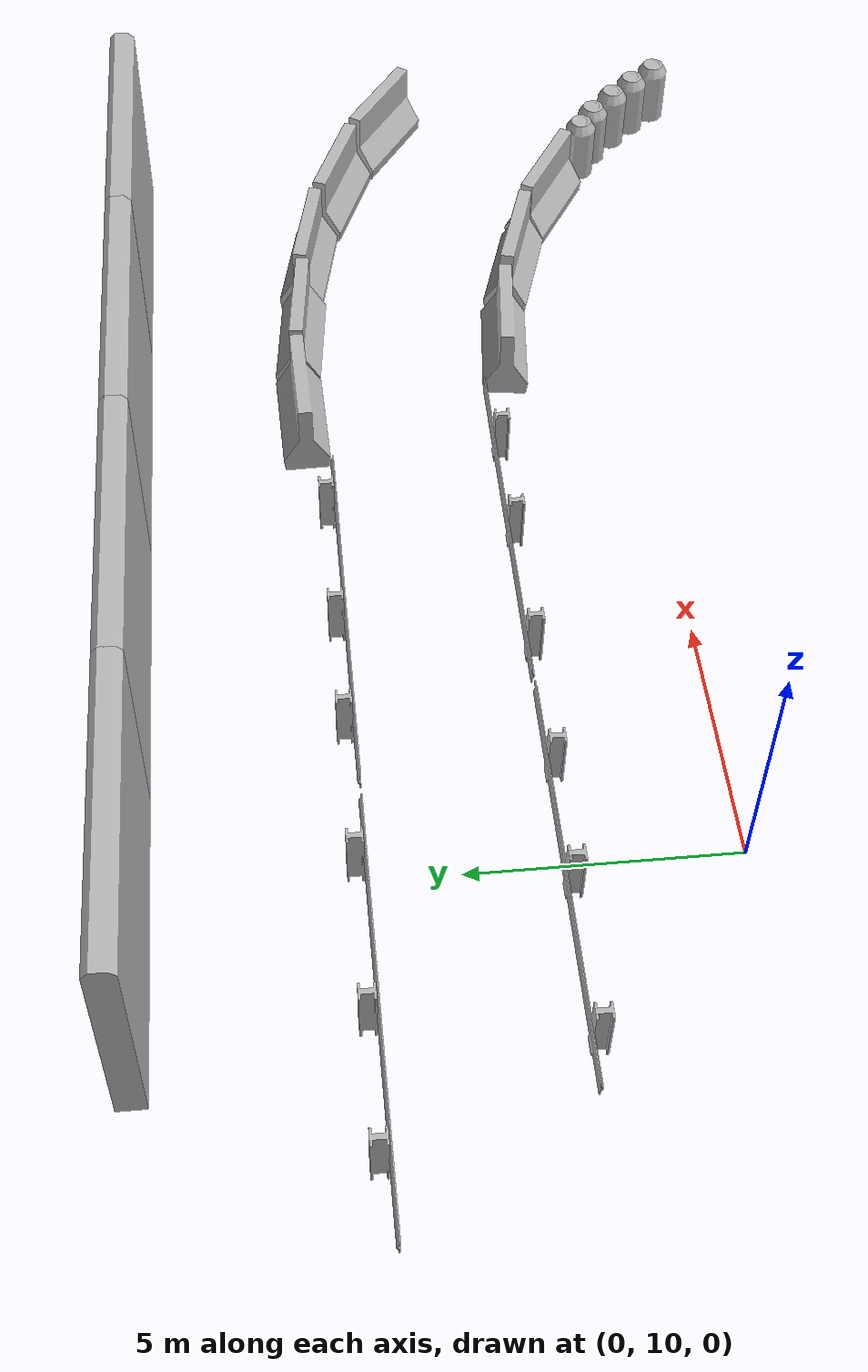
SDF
<sdf version="1.7">
 <world name="default">
  <model name="aws_robomaker_racetrack_CrashworthBucket_01_32">
   <frame name="aws_CrashworthBucket_01::__model__" attached_to="aws_CrashworthBucket_01::body">
    <pose relative_to="__model__">0 0 0 0 -0 0</pose>
   </frame>
   <link name="aws_CrashworthBucket_01::body">
    <pose relative_to="aws_CrashworthBucket_01::__model__">0 0 0 0 -0 0</pose>
    <inertial>
     <mass>5</mass>
     <inertia><ixx>1</ixx><ixy>0</ixy><ixz>0</ixz><iyy>1</iyy><iyz>0</iyz><izz>1</izz></inertia>
    </inertial>
    <visual name="visual">
     <geometry>
      <mesh>
       <uri>file://models/aws_robomaker_racetrack_CrashworthBucket_01/meshes/aws_CrashworthBucket_01_visual.DAE</uri>
      </mesh>
     </geometry>
     <material><shader type="pixel"><normal_map>__default__</normal_map></shader></material>
     <meta><layer>0</layer></meta>
    </visual>
    <collision name="collision_0">
     <geometry>
      <mesh>
       <uri>file://models/aws_robomaker_racetrack_CrashworthBucket_01/meshes/aws_CrashworthBucket_01_collision.DAE</uri>
       <scale>1 1 1</scale>
      </mesh>
     </geometry>
     <surface>
      <friction>
       <ode><mu>1</mu><mu2>1</mu2><fdir1>0 0 0</fdir1><slip1>0</slip1><slip2>0</slip2></ode>
       <torsional>
        <coefficient>1</coefficient>
        <patch_radius>0</patch_radius>
        <surface_radius>0</surface_radius>
        <use_patch_radius>1</use_patch_radius>
        <ode><slip>0</slip></ode>
       </torsional>
      </friction>
      <bounce><restitution_coefficient>0</restitution_coefficient><threshold>1e+06</threshold></bounce>
      <contact>
       <collide_without_contact>0</collide_without_contact>
       <collide_without_contact_bitmask>1</collide_without_contact_bitmask>
       <collide_bitmask>1</collide_bitmask>
       <ode>
        <soft_cfm>0</soft_cfm>
        <soft_erp>0.2</soft_erp>
        <kp>1e+13</kp>
        <kd>1</kd>
        <max_vel>0.01</max_vel>
        <min_depth>0</min_depth>
       </ode>
       <bullet>
        <split_impulse>1</split_impulse>
        <split_impulse_penetration_threshold>-0.01</split_impulse_penetration_threshold>
        <soft_cfm>0</soft_cfm>
        <soft_erp>0.2</soft_erp>
        <kp>1e+13</kp>
        <kd>1</kd>
       </bullet>
      </contact>
     </surface>
    </collision>
   </link>
   <static>1</static>
   <pose>20.5304 9.13561 0.054 0 0 -0.001449</pose>
  </model>
  <model name="aws_robomaker_racetrack_CrashworthBucket_01_33">
   <frame name="aws_CrashworthBucket_01::__model__" attached_to="aws_CrashworthBucket_01::body">
    <pose relative_to="__model__">0 0 0 0 -0 0</pose>
   </frame>
   <link name="aws_CrashworthBucket_01::body">
    <pose relative_to="aws_CrashworthBucket_01::__model__">0 0 0 0 -0 0</pose>
    <inertial>
     <mass>5</mass>
     <inertia><ixx>1</ixx><ixy>0</ixy><ixz>0</ixz><iyy>1</iyy><iyz>0</iyz><izz>1</izz></inertia>
    </inertial>
    <visual name="visual">
     <geometry>
      <mesh>
       <uri>file://models/aws_robomaker_racetrack_CrashworthBucket_01/meshes/aws_CrashworthBucket_01_visual.DAE</uri>
      </mesh>
     </geometry>
     <material><shader type="pixel"><normal_map>__default__</normal_map></shader></material>
     <meta><layer>0</layer></meta>
    </visual>
    <collision name="collision_0">
     <geometry>
      <mesh>
       <uri>file://models/aws_robomaker_racetrack_CrashworthBucket_01/meshes/aws_CrashworthBucket_01_collision.DAE</uri>
       <scale>1 1 1</scale>
      </mesh>
     </geometry>
     <surface>
      <friction>
       <ode><mu>1</mu><mu2>1</mu2><fdir1>0 0 0</fdir1><slip1>0</slip1><slip2>0</slip2></ode>
       <torsional>
        <coefficient>1</coefficient>
        <patch_radius>0</patch_radius>
        <surface_radius>0</surface_radius>
        <use_patch_radius>1</use_patch_radius>
        <ode><slip>0</slip></ode>
       </torsional>
      </friction>
      <bounce><restitution_coefficient>0</restitution_coefficient><threshold>1e+06</threshold></bounce>
      <contact>
       <collide_without_contact>0</collide_without_contact>
       <collide_without_contact_bitmask>1</collide_without_contact_bitmask>
       <collide_bitmask>1</collide_bitmask>
       <ode>
        <soft_cfm>0</soft_cfm>
        <soft_erp>0.2</soft_erp>
        <kp>1e+13</kp>
        <kd>1</kd>
        <max_vel>0.01</max_vel>
        <min_depth>0</min_depth>
       </ode>
       <bullet>
        <split_impulse>1</split_impulse>
        <split_impulse_penetration_threshold>-0.01</split_impulse_penetration_threshold>
        <soft_cfm>0</soft_cfm>
        <soft_erp>0.2</soft_erp>
        <kp>1e+13</kp>
        <kd>1</kd>
       </bullet>
      </contact>
     </surface>
    </collision>
   </link>
   <static>1</static>
   <pose>19.3714 10.0864 0.054 0 -0 0</pose>
  </model>
  <model name="aws_robomaker_racetrack_CrashworthBucket_01_34">
   <frame name="aws_CrashworthBucket_01::__model__" attached_to="aws_CrashworthBucket_01::body">
    <pose relative_to="__model__">0 0 0 0 -0 0</pose>
   </frame>
   <link name="aws_CrashworthBucket_01::body">
    <pose relative_to="aws_CrashworthBucket_01::__model__">0 0 0 0 -0 0</pose>
    <inertial>
     <mass>5</mass>
     <inertia><ixx>1</ixx><ixy>0</ixy><ixz>0</ixz><iyy>1</iyy><iyz>0</iyz><izz>1</izz></inertia>
    </inertial>
    <visual name="visual">
     <geometry>
      <mesh>
       <uri>file://models/aws_robomaker_racetrack_CrashworthBucket_01/meshes/aws_CrashworthBucket_01_visual.DAE</uri>
      </mesh>
     </geometry>
     <material><shader type="pixel"><normal_map>__default__</normal_map></shader></material>
     <meta><layer>0</layer></meta>
    </visual>
    <collision name="collision_0">
     <geometry>
      <mesh>
       <uri>file://models/aws_robomaker_racetrack_CrashworthBucket_01/meshes/aws_CrashworthBucket_01_collision.DAE</uri>
       <scale>1 1 1</scale>
      </mesh>
     </geometry>
     <surface>
      <friction>
       <ode><mu>1</mu><mu2>1</mu2><fdir1>0 0 0</fdir1><slip1>0</slip1><slip2>0</slip2></ode>
       <torsional>
        <coefficient>1</coefficient>
        <patch_radius>0</patch_radius>
        <surface_radius>0</surface_radius>
        <use_patch_radius>1</use_patch_radius>
        <ode><slip>0</slip></ode>
       </torsional>
      </friction>
      <bounce><restitution_coefficient>0</restitution_coefficient><threshold>1e+06</threshold></bounce>
      <contact>
       <collide_without_contact>0</collide_without_contact>
       <collide_without_contact_bitmask>1</collide_without_contact_bitmask>
       <collide_bitmask>1</collide_bitmask>
       <ode>
        <soft_cfm>0</soft_cfm>
        <soft_erp>0.2</soft_erp>
        <kp>1e+13</kp>
        <kd>1</kd>
        <max_vel>0.01</max_vel>
        <min_depth>0</min_depth>
       </ode>
       <bullet>
        <split_impulse>1</split_impulse>
        <split_impulse_penetration_threshold>-0.01</split_impulse_penetration_threshold>
        <soft_cfm>0</soft_cfm>
        <soft_erp>0.2</soft_erp>
        <kp>1e+13</kp>
        <kd>1</kd>
       </bullet>
      </contact>
     </surface>
    </collision>
   </link>
   <static>1</static>
   <pose>20.0016 9.69426 0 0 0 -0.00182</pose>
  </model>
  <model name="aws_robomaker_racetrack_CrashworthBucket_01_35">
   <frame name="aws_CrashworthBucket_01::__model__" attached_to="aws_CrashworthBucket_01::body">
    <pose relative_to="__model__">0 0 0 0 -0 0</pose>
   </frame>
   <link name="aws_CrashworthBucket_01::body">
    <pose relative_to="aws_CrashworthBucket_01::__model__">0 0 0 0 -0 0</pose>
    <inertial>
     <mass>5</mass>
     <inertia><ixx>1</ixx><ixy>0</ixy><ixz>0</ixz><iyy>1</iyy><iyz>0</iyz><izz>1</izz></inertia>
    </inertial>
    <visual name="visual">
     <geometry>
      <mesh>
       <uri>file://models/aws_robomaker_racetrack_CrashworthBucket_01/meshes/aws_CrashworthBucket_01_visual.DAE</uri>
      </mesh>
     </geometry>
     <material><shader type="pixel"><normal_map>__default__</normal_map></shader></material>
     <meta><layer>0</layer></meta>
    </visual>
    <collision name="collision_0">
     <geometry>
      <mesh>
       <uri>file://models/aws_robomaker_racetrack_CrashworthBucket_01/meshes/aws_CrashworthBucket_01_collision.DAE</uri>
       <scale>1 1 1</scale>
      </mesh>
     </geometry>
     <surface>
      <friction>
       <ode><mu>1</mu><mu2>1</mu2><fdir1>0 0 0</fdir1><slip1>0</slip1><slip2>0</slip2></ode>
       <torsional>
        <coefficient>1</coefficient>
        <patch_radius>0</patch_radius>
        <surface_radius>0</surface_radius>
        <use_patch_radius>1</use_patch_radius>
        <ode><slip>0</slip></ode>
       </torsional>
      </friction>
      <bounce><restitution_coefficient>0</restitution_coefficient><threshold>1e+06</threshold></bounce>
      <contact>
       <collide_without_contact>0</collide_without_contact>
       <collide_without_contact_bitmask>1</collide_without_contact_bitmask>
       <collide_bitmask>1</collide_bitmask>
       <ode>
        <soft_cfm>0</soft_cfm>
        <soft_erp>0.2</soft_erp>
        <kp>1e+13</kp>
        <kd>1</kd>
        <max_vel>0.01</max_vel>
        <min_depth>0</min_depth>
       </ode>
       <bullet>
        <split_impulse>1</split_impulse>
        <split_impulse_penetration_threshold>-0.01</split_impulse_penetration_threshold>
        <soft_cfm>0</soft_cfm>
        <soft_erp>0.2</soft_erp>
        <kp>1e+13</kp>
        <kd>1</kd>
       </bullet>
      </contact>
     </surface>
    </collision>
   </link>
   <static>1</static>
   <pose>21.0478 8.57525 0.054 0 0 -0.000349</pose>
  </model>
  <model name="aws_robomaker_racetrack_CrashworthBucket_01_36">
   <frame name="aws_CrashworthBucket_01::__model__" attached_to="aws_CrashworthBucket_01::body">
    <pose relative_to="__model__">0 0 0 0 -0 0</pose>
   </frame>
   <link name="aws_CrashworthBucket_01::body">
    <pose relative_to="aws_CrashworthBucket_01::__model__">0 0 0 0 -0 0</pose>
    <inertial>
     <mass>5</mass>
     <inertia><ixx>1</ixx><ixy>0</ixy><ixz>0</ixz><iyy>1</iyy><iyz>0</iyz><izz>1</izz></inertia>
    </inertial>
    <visual name="visual">
     <geometry>
      <mesh>
       <uri>file://models/aws_robomaker_racetrack_CrashworthBucket_01/meshes/aws_CrashworthBucket_01_visual.DAE</uri>
      </mesh>
     </geometry>
     <material><shader type="pixel"><normal_map>__default__</normal_map></shader></material>
     <meta><layer>0</layer></meta>
    </visual>
    <collision name="collision_0">
     <geometry>
      <mesh>
       <uri>file://models/aws_robomaker_racetrack_CrashworthBucket_01/meshes/aws_CrashworthBucket_01_collision.DAE</uri>
       <scale>1 1 1</scale>
      </mesh>
     </geometry>
     <surface>
      <friction>
       <ode><mu>1</mu><mu2>1</mu2><fdir1>0 0 0</fdir1><slip1>0</slip1><slip2>0</slip2></ode>
       <torsional>
        <coefficient>1</coefficient>
        <patch_radius>0</patch_radius>
        <surface_radius>0</surface_radius>
        <use_patch_radius>1</use_patch_radius>
        <ode><slip>0</slip></ode>
       </torsional>
      </friction>
      <bounce><restitution_coefficient>0</restitution_coefficient><threshold>1e+06</threshold></bounce>
      <contact>
       <collide_without_contact>0</collide_without_contact>
       <collide_without_contact_bitmask>1</collide_without_contact_bitmask>
       <collide_bitmask>1</collide_bitmask>
       <ode>
        <soft_cfm>0</soft_cfm>
        <soft_erp>0.2</soft_erp>
        <kp>1e+13</kp>
        <kd>1</kd>
        <max_vel>0.01</max_vel>
        <min_depth>0</min_depth>
       </ode>
       <bullet>
        <split_impulse>1</split_impulse>
        <split_impulse_penetration_threshold>-0.01</split_impulse_penetration_threshold>
        <soft_cfm>0</soft_cfm>
        <soft_erp>0.2</soft_erp>
        <kp>1e+13</kp>
        <kd>1</kd>
       </bullet>
      </contact>
     </surface>
    </collision>
   </link>
   <static>1</static>
   <pose>21.5218 7.97169 0.054 0 -0 0</pose>
  </model>
  <model name="aws_robomaker_racetrack_Fence_01_00">
   <frame name="aws_Fence_01::__model__" attached_to="aws_Fence_01::body">
    <pose relative_to="__model__">0 0 0 0 -0 0</pose>
   </frame>
   <link name="aws_Fence_01::body">
    <pose relative_to="aws_Fence_01::__model__">0 0 0 0 -0 0</pose>
    <inertial>
     <mass>5</mass>
     <inertia><ixx>1</ixx><ixy>0</ixy><ixz>0</ixz><iyy>1</iyy><iyz>0</iyz><izz>1</izz></inertia>
    </inertial>
    <visual name="visual">
     <geometry>
      <mesh><uri>file://models/aws_robomaker_racetrack_Fence_01/meshes/aws_Fence_01_visual.DAE</uri></mesh>
     </geometry>
     <material><shader type="pixel"><normal_map>__default__</normal_map></shader></material>
     <meta><layer>0</layer></meta>
    </visual>
    <collision name="collision_0">
     <geometry>
      <mesh>
       <uri>file://models/aws_robomaker_racetrack_Fence_01/meshes/aws_Fence_01_collision.DAE</uri>
       <scale>1 1 1</scale>
      </mesh>
     </geometry>
     <surface>
      <friction>
       <ode><mu>1</mu><mu2>1</mu2><fdir1>0 0 0</fdir1><slip1>0</slip1><slip2>0</slip2></ode>
       <torsional>
        <coefficient>1</coefficient>
        <patch_radius>0</patch_radius>
        <surface_radius>0</surface_radius>
        <use_patch_radius>1</use_patch_radius>
        <ode><slip>0</slip></ode>
       </torsional>
      </friction>
      <bounce><restitution_coefficient>0</restitution_coefficient><threshold>1e+06</threshold></bounce>
      <contact>
       <collide_without_contact>0</collide_without_contact>
       <collide_without_contact_bitmask>1</collide_without_contact_bitmask>
       <collide_bitmask>1</collide_bitmask>
       <ode>
        <soft_cfm>0</soft_cfm>
        <soft_erp>0.2</soft_erp>
        <kp>1e+13</kp>
        <kd>1</kd>
        <max_vel>0.01</max_vel>
        <min_depth>0</min_depth>
       </ode>
       <bullet>
        <split_impulse>1</split_impulse>
        <split_impulse_penetration_threshold>-0.01</split_impulse_penetration_threshold>
        <soft_cfm>0</soft_cfm>
        <soft_erp>0.2</soft_erp>
        <kp>1e+13</kp>
        <kd>1</kd>
       </bullet>
      </contact>
     </surface>
    </collision>
   </link>
   <static>1</static>
   <pose>7.553 13.1587 0 0 0 -1.57272</pose>
  </model>
  <model name="aws_robomaker_racetrack_Fence_01_01">
   <frame name="aws_Fence_01::__model__" attached_to="aws_Fence_01::body">
    <pose relative_to="__model__">0 0 0 0 -0 0</pose>
   </frame>
   <link name="aws_Fence_01::body">
    <pose relative_to="aws_Fence_01::__model__">0 0 0 0 -0 0</pose>
    <inertial>
     <mass>5</mass>
     <inertia><ixx>1</ixx><ixy>0</ixy><ixz>0</ixz><iyy>1</iyy><iyz>0</iyz><izz>1</izz></inertia>
    </inertial>
    <visual name="visual">
     <geometry>
      <mesh><uri>file://models/aws_robomaker_racetrack_Fence_01/meshes/aws_Fence_01_visual.DAE</uri></mesh>
     </geometry>
     <material><shader type="pixel"><normal_map>__default__</normal_map></shader></material>
     <meta><layer>0</layer></meta>
    </visual>
    <collision name="collision_0">
     <geometry>
      <mesh>
       <uri>file://models/aws_robomaker_racetrack_Fence_01/meshes/aws_Fence_01_collision.DAE</uri>
       <scale>1 1 1</scale>
      </mesh>
     </geometry>
     <surface>
      <friction>
       <ode><mu>1</mu><mu2>1</mu2><fdir1>0 0 0</fdir1><slip1>0</slip1><slip2>0</slip2></ode>
       <torsional>
        <coefficient>1</coefficient>
        <patch_radius>0</patch_radius>
        <surface_radius>0</surface_radius>
        <use_patch_radius>1</use_patch_radius>
        <ode><slip>0</slip></ode>
       </torsional>
      </friction>
      <bounce><restitution_coefficient>0</restitution_coefficient><threshold>1e+06</threshold></bounce>
      <contact>
       <collide_without_contact>0</collide_without_contact>
       <collide_without_contact_bitmask>1</collide_without_contact_bitmask>
       <collide_bitmask>1</collide_bitmask>
       <ode>
        <soft_cfm>0</soft_cfm>
        <soft_erp>0.2</soft_erp>
        <kp>1e+13</kp>
        <kd>1</kd>
        <max_vel>0.01</max_vel>
        <min_depth>0</min_depth>
       </ode>
       <bullet>
        <split_impulse>1</split_impulse>
        <split_impulse_penetration_threshold>-0.01</split_impulse_penetration_threshold>
        <soft_cfm>0</soft_cfm>
        <soft_erp>0.2</soft_erp>
        <kp>1e+13</kp>
        <kd>1</kd>
       </bullet>
      </contact>
     </surface>
    </collision>
   </link>
   <static>1</static>
   <pose>-0.500271 13.1587 0 0 0 -1.57272</pose>
  </model>
  <model name="aws_robomaker_racetrack_Fence_01_14">
   <frame name="aws_Fence_01::__model__" attached_to="aws_Fence_01::body">
    <pose relative_to="__model__">0 0 0 0 -0 0</pose>
   </frame>
   <link name="aws_Fence_01::body">
    <pose relative_to="aws_Fence_01::__model__">0 0 0 0 -0 0</pose>
    <inertial>
     <mass>5</mass>
     <inertia><ixx>1</ixx><ixy>0</ixy><ixz>0</ixz><iyy>1</iyy><iyz>0</iyz><izz>1</izz></inertia>
    </inertial>
    <visual name="visual">
     <geometry>
      <mesh><uri>file://models/aws_robomaker_racetrack_Fence_01/meshes/aws_Fence_01_visual.DAE</uri></mesh>
     </geometry>
     <material><shader type="pixel"><normal_map>__default__</normal_map></shader></material>
     <meta><layer>0</layer></meta>
    </visual>
    <collision name="collision_0">
     <geometry>
      <mesh>
       <uri>file://models/aws_robomaker_racetrack_Fence_01/meshes/aws_Fence_01_collision.DAE</uri>
       <scale>1 1 1</scale>
      </mesh>
     </geometry>
     <surface>
      <friction>
       <ode><mu>1</mu><mu2>1</mu2><fdir1>0 0 0</fdir1><slip1>0</slip1><slip2>0</slip2></ode>
       <torsional>
        <coefficient>1</coefficient>
        <patch_radius>0</patch_radius>
        <surface_radius>0</surface_radius>
        <use_patch_radius>1</use_patch_radius>
        <ode><slip>0</slip></ode>
       </torsional>
      </friction>
      <bounce><restitution_coefficient>0</restitution_coefficient><threshold>1e+06</threshold></bounce>
      <contact>
       <collide_without_contact>0</collide_without_contact>
       <collide_without_contact_bitmask>1</collide_without_contact_bitmask>
       <collide_bitmask>1</collide_bitmask>
       <ode>
        <soft_cfm>0</soft_cfm>
        <soft_erp>0.2</soft_erp>
        <kp>1e+13</kp>
        <kd>1</kd>
        <max_vel>0.01</max_vel>
        <min_depth>0</min_depth>
       </ode>
       <bullet>
        <split_impulse>1</split_impulse>
        <split_impulse_penetration_threshold>-0.01</split_impulse_penetration_threshold>
        <soft_cfm>0</soft_cfm>
        <soft_erp>0.2</soft_erp>
        <kp>1e+13</kp>
        <kd>1</kd>
       </bullet>
      </contact>
     </surface>
    </collision>
   </link>
   <static>1</static>
   <pose>-2.67941 16.8189 0 0 -0 1.57158</pose>
  </model>
  <model name="aws_robomaker_racetrack_Fence_01_15">
   <frame name="aws_Fence_01::__model__" attached_to="aws_Fence_01::body">
    <pose relative_to="__model__">0 0 0 0 -0 0</pose>
   </frame>
   <link name="aws_Fence_01::body">
    <pose relative_to="aws_Fence_01::__model__">0 0 0 0 -0 0</pose>
    <inertial>
     <mass>5</mass>
     <inertia><ixx>1</ixx><ixy>0</ixy><ixz>0</ixz><iyy>1</iyy><iyz>0</iyz><izz>1</izz></inertia>
    </inertial>
    <visual name="visual">
     <geometry>
      <mesh><uri>file://models/aws_robomaker_racetrack_Fence_01/meshes/aws_Fence_01_visual.DAE</uri></mesh>
     </geometry>
     <material><shader type="pixel"><normal_map>__default__</normal_map></shader></material>
     <meta><layer>0</layer></meta>
    </visual>
    <collision name="collision_0">
     <geometry>
      <mesh>
       <uri>file://models/aws_robomaker_racetrack_Fence_01/meshes/aws_Fence_01_collision.DAE</uri>
       <scale>1 1 1</scale>
      </mesh>
     </geometry>
     <surface>
      <friction>
       <ode><mu>1</mu><mu2>1</mu2><fdir1>0 0 0</fdir1><slip1>0</slip1><slip2>0</slip2></ode>
       <torsional>
        <coefficient>1</coefficient>
        <patch_radius>0</patch_radius>
        <surface_radius>0</surface_radius>
        <use_patch_radius>1</use_patch_radius>
        <ode><slip>0</slip></ode>
       </torsional>
      </friction>
      <bounce><restitution_coefficient>0</restitution_coefficient><threshold>1e+06</threshold></bounce>
      <contact>
       <collide_without_contact>0</collide_without_contact>
       <collide_without_contact_bitmask>1</collide_without_contact_bitmask>
       <collide_bitmask>1</collide_bitmask>
       <ode>
        <soft_cfm>0</soft_cfm>
        <soft_erp>0.2</soft_erp>
        <kp>1e+13</kp>
        <kd>1</kd>
        <max_vel>0.01</max_vel>
        <min_depth>0</min_depth>
       </ode>
       <bullet>
        <split_impulse>1</split_impulse>
        <split_impulse_penetration_threshold>-0.01</split_impulse_penetration_threshold>
        <soft_cfm>0</soft_cfm>
        <soft_erp>0.2</soft_erp>
        <kp>1e+13</kp>
        <kd>1</kd>
       </bullet>
      </contact>
     </surface>
    </collision>
   </link>
   <static>1</static>
   <pose>5.47501 16.8189 0.054 0 -0 1.57158</pose>
  </model>
  <model name="aws_robomaker_racetrack_StonePier_01_05">
   <frame name="aws_StonePier_01::__model__" attached_to="aws_StonePier_01::body">
    <pose relative_to="__model__">0 0 0 0 -0 0</pose>
   </frame>
   <link name="aws_StonePier_01::body">
    <pose relative_to="aws_StonePier_01::__model__">0 0 0 0 -0 0</pose>
    <inertial>
     <mass>10</mass>
     <inertia><ixx>0</ixx><ixy>0</ixy><ixz>0</ixz><iyy>0</iyy><iyz>0</iyz><izz>0</izz></inertia>
    </inertial>
    <visual name="visual">
     <geometry>
      <mesh><uri>file://models/aws_robomaker_racetrack_StonePier_01/meshes/aws_StonePier_01_visual.DAE</uri></mesh>
     </geometry>
     <material><shader type="pixel"><normal_map>__default__</normal_map></shader></material>
     <meta><layer>0</layer></meta>
    </visual>
    <collision name="collision_0">
     <geometry>
      <mesh>
       <uri>file://models/aws_robomaker_racetrack_StonePier_01/meshes/aws_StonePier_01_collision.DAE</uri>
       <scale>1 1 1</scale>
      </mesh>
     </geometry>
     <surface>
      <friction>
       <ode><mu>1</mu><mu2>1</mu2><fdir1>0 0 0</fdir1><slip1>0</slip1><slip2>0</slip2></ode>
       <torsional>
        <coefficient>1</coefficient>
        <patch_radius>0</patch_radius>
        <surface_radius>0</surface_radius>
        <use_patch_radius>1</use_patch_radius>
        <ode><slip>0</slip></ode>
       </torsional>
      </friction>
      <bounce><restitution_coefficient>0</restitution_coefficient><threshold>1e+06</threshold></bounce>
      <contact>
       <collide_without_contact>0</collide_without_contact>
       <collide_without_contact_bitmask>1</collide_without_contact_bitmask>
       <collide_bitmask>1</collide_bitmask>
       <ode>
        <soft_cfm>0</soft_cfm>
        <soft_erp>0.2</soft_erp>
        <kp>1e+13</kp>
        <kd>1</kd>
        <max_vel>0.01</max_vel>
        <min_depth>0</min_depth>
       </ode>
       <bullet>
        <split_impulse>1</split_impulse>
        <split_impulse_penetration_threshold>-0.01</split_impulse_penetration_threshold>
        <soft_cfm>0</soft_cfm>
        <soft_erp>0.2</soft_erp>
        <kp>1e+13</kp>
        <kd>1</kd>
       </bullet>
      </contact>
     </surface>
    </collision>
   </link>
   <static>1</static>
   <pose>11.0892 17.2043 0.054 0 -0 0.029389</pose>
  </model>
  <model name="aws_robomaker_racetrack_StonePier_01_06">
   <frame name="aws_StonePier_01::__model__" attached_to="aws_StonePier_01::body">
    <pose relative_to="__model__">0 0 0 0 -0 0</pose>
   </frame>
   <link name="aws_StonePier_01::body">
    <pose relative_to="aws_StonePier_01::__model__">0 0 0 0 -0 0</pose>
    <inertial>
     <mass>10</mass>
     <inertia><ixx>0</ixx><ixy>0</ixy><ixz>0</ixz><iyy>0</iyy><iyz>0</iyz><izz>0</izz></inertia>
    </inertial>
    <visual name="visual">
     <geometry>
      <mesh><uri>file://models/aws_robomaker_racetrack_StonePier_01/meshes/aws_StonePier_01_visual.DAE</uri></mesh>
     </geometry>
     <material><shader type="pixel"><normal_map>__default__</normal_map></shader></material>
     <meta><layer>0</layer></meta>
    </visual>
    <collision name="collision_0">
     <geometry>
      <mesh>
       <uri>file://models/aws_robomaker_racetrack_StonePier_01/meshes/aws_StonePier_01_collision.DAE</uri>
       <scale>1 1 1</scale>
      </mesh>
     </geometry>
     <surface>
      <friction>
       <ode><mu>1</mu><mu2>1</mu2><fdir1>0 0 0</fdir1><slip1>0</slip1><slip2>0</slip2></ode>
       <torsional>
        <coefficient>1</coefficient>
        <patch_radius>0</patch_radius>
        <surface_radius>0</surface_radius>
        <use_patch_radius>1</use_patch_radius>
        <ode><slip>0</slip></ode>
       </torsional>
      </friction>
      <bounce><restitution_coefficient>0</restitution_coefficient><threshold>1e+06</threshold></bounce>
      <contact>
       <collide_without_contact>0</collide_without_contact>
       <collide_without_contact_bitmask>1</collide_without_contact_bitmask>
       <collide_bitmask>1</collide_bitmask>
       <ode>
        <soft_cfm>0</soft_cfm>
        <soft_erp>0.2</soft_erp>
        <kp>1e+13</kp>
        <kd>1</kd>
        <max_vel>0.01</max_vel>
        <min_depth>0</min_depth>
       </ode>
       <bullet>
        <split_impulse>1</split_impulse>
        <split_impulse_penetration_threshold>-0.01</split_impulse_penetration_threshold>
        <soft_cfm>0</soft_cfm>
        <soft_erp>0.2</soft_erp>
        <kp>1e+13</kp>
        <kd>1</kd>
       </bullet>
      </contact>
     </surface>
    </collision>
   </link>
   <static>1</static>
   <pose>13.5633 17.1121 0.054 0 0 -0.108086</pose>
  </model>
  <model name="aws_robomaker_racetrack_StonePier_01_07">
   <frame name="aws_StonePier_01::__model__" attached_to="aws_StonePier_01::body">
    <pose relative_to="__model__">0 0 0 0 -0 0</pose>
   </frame>
   <link name="aws_StonePier_01::body">
    <pose relative_to="aws_StonePier_01::__model__">0 0 0 0 -0 0</pose>
    <inertial>
     <mass>10</mass>
     <inertia><ixx>0</ixx><ixy>0</ixy><ixz>0</ixz><iyy>0</iyy><iyz>0</iyz><izz>0</izz></inertia>
    </inertial>
    <visual name="visual">
     <geometry>
      <mesh><uri>file://models/aws_robomaker_racetrack_StonePier_01/meshes/aws_StonePier_01_visual.DAE</uri></mesh>
     </geometry>
     <material><shader type="pixel"><normal_map>__default__</normal_map></shader></material>
     <meta><layer>0</layer></meta>
    </visual>
    <collision name="collision_0">
     <geometry>
      <mesh>
       <uri>file://models/aws_robomaker_racetrack_StonePier_01/meshes/aws_StonePier_01_collision.DAE</uri>
       <scale>1 1 1</scale>
      </mesh>
     </geometry>
     <surface>
      <friction>
       <ode><mu>1</mu><mu2>1</mu2><fdir1>0 0 0</fdir1><slip1>0</slip1><slip2>0</slip2></ode>
       <torsional>
        <coefficient>1</coefficient>
        <patch_radius>0</patch_radius>
        <surface_radius>0</surface_radius>
        <use_patch_radius>1</use_patch_radius>
        <ode><slip>0</slip></ode>
       </torsional>
      </friction>
      <bounce><restitution_coefficient>0</restitution_coefficient><threshold>1e+06</threshold></bounce>
      <contact>
       <collide_without_contact>0</collide_without_contact>
       <collide_without_contact_bitmask>1</collide_without_contact_bitmask>
       <collide_bitmask>1</collide_bitmask>
       <ode>
        <soft_cfm>0</soft_cfm>
        <soft_erp>0.2</soft_erp>
        <kp>1e+13</kp>
        <kd>1</kd>
        <max_vel>0.01</max_vel>
        <min_depth>0</min_depth>
       </ode>
       <bullet>
        <split_impulse>1</split_impulse>
        <split_impulse_penetration_threshold>-0.01</split_impulse_penetration_threshold>
        <soft_cfm>0</soft_cfm>
        <soft_erp>0.2</soft_erp>
        <kp>1e+13</kp>
        <kd>1</kd>
       </bullet>
      </contact>
     </surface>
    </collision>
   </link>
   <static>1</static>
   <pose>16.0013 16.8104 0.054 0 0 -0.206147</pose>
  </model>
  <model name="aws_robomaker_racetrack_StonePier_01_08">
   <frame name="aws_StonePier_01::__model__" attached_to="aws_StonePier_01::body">
    <pose relative_to="__model__">0 0 0 0 -0 0</pose>
   </frame>
   <link name="aws_StonePier_01::body">
    <pose relative_to="aws_StonePier_01::__model__">0 0 0 0 -0 0</pose>
    <inertial>
     <mass>10</mass>
     <inertia><ixx>0</ixx><ixy>0</ixy><ixz>0</ixz><iyy>0</iyy><iyz>0</iyz><izz>0</izz></inertia>
    </inertial>
    <visual name="visual">
     <geometry>
      <mesh><uri>file://models/aws_robomaker_racetrack_StonePier_01/meshes/aws_StonePier_01_visual.DAE</uri></mesh>
     </geometry>
     <material><shader type="pixel"><normal_map>__default__</normal_map></shader></material>
     <meta><layer>0</layer></meta>
    </visual>
    <collision name="collision_0">
     <geometry>
      <mesh>
       <uri>file://models/aws_robomaker_racetrack_StonePier_01/meshes/aws_StonePier_01_collision.DAE</uri>
       <scale>1 1 1</scale>
      </mesh>
     </geometry>
     <surface>
      <friction>
       <ode><mu>1</mu><mu2>1</mu2><fdir1>0 0 0</fdir1><slip1>0</slip1><slip2>0</slip2></ode>
       <torsional>
        <coefficient>1</coefficient>
        <patch_radius>0</patch_radius>
        <surface_radius>0</surface_radius>
        <use_patch_radius>1</use_patch_radius>
        <ode><slip>0</slip></ode>
       </torsional>
      </friction>
      <bounce><restitution_coefficient>0</restitution_coefficient><threshold>1e+06</threshold></bounce>
      <contact>
       <collide_without_contact>0</collide_without_contact>
       <collide_without_contact_bitmask>1</collide_without_contact_bitmask>
       <collide_bitmask>1</collide_bitmask>
       <ode>
        <soft_cfm>0</soft_cfm>
        <soft_erp>0.2</soft_erp>
        <kp>1e+13</kp>
        <kd>1</kd>
        <max_vel>0.01</max_vel>
        <min_depth>0</min_depth>
       </ode>
       <bullet>
        <split_impulse>1</split_impulse>
        <split_impulse_penetration_threshold>-0.01</split_impulse_penetration_threshold>
        <soft_cfm>0</soft_cfm>
        <soft_erp>0.2</soft_erp>
        <kp>1e+13</kp>
        <kd>1</kd>
       </bullet>
      </contact>
     </surface>
    </collision>
   </link>
   <static>1</static>
   <pose>18.4263 16.0384 0.054 0 0 -0.379591</pose>
  </model>
  <model name="aws_robomaker_racetrack_StonePier_01_09">
   <frame name="aws_StonePier_01::__model__" attached_to="aws_StonePier_01::body">
    <pose relative_to="__model__">0 0 0 0 -0 0</pose>
   </frame>
   <link name="aws_StonePier_01::body">
    <pose relative_to="aws_StonePier_01::__model__">0 0 0 0 -0 0</pose>
    <inertial>
     <mass>10</mass>
     <inertia><ixx>0</ixx><ixy>0</ixy><ixz>0</ixz><iyy>0</iyy><iyz>0</iyz><izz>0</izz></inertia>
    </inertial>
    <visual name="visual">
     <geometry>
      <mesh><uri>file://models/aws_robomaker_racetrack_StonePier_01/meshes/aws_StonePier_01_visual.DAE</uri></mesh>
     </geometry>
     <material><shader type="pixel"><normal_map>__default__</normal_map></shader></material>
     <meta><layer>0</layer></meta>
    </visual>
    <collision name="collision_0">
     <geometry>
      <mesh>
       <uri>file://models/aws_robomaker_racetrack_StonePier_01/meshes/aws_StonePier_01_collision.DAE</uri>
       <scale>1 1 1</scale>
      </mesh>
     </geometry>
     <surface>
      <friction>
       <ode><mu>1</mu><mu2>1</mu2><fdir1>0 0 0</fdir1><slip1>0</slip1><slip2>0</slip2></ode>
       <torsional>
        <coefficient>1</coefficient>
        <patch_radius>0</patch_radius>
        <surface_radius>0</surface_radius>
        <use_patch_radius>1</use_patch_radius>
        <ode><slip>0</slip></ode>
       </torsional>
      </friction>
      <bounce><restitution_coefficient>0</restitution_coefficient><threshold>1e+06</threshold></bounce>
      <contact>
       <collide_without_contact>0</collide_without_contact>
       <collide_without_contact_bitmask>1</collide_without_contact_bitmask>
       <collide_bitmask>1</collide_bitmask>
       <ode>
        <soft_cfm>0</soft_cfm>
        <soft_erp>0.2</soft_erp>
        <kp>1e+13</kp>
        <kd>1</kd>
        <max_vel>0.01</max_vel>
        <min_depth>0</min_depth>
       </ode>
       <bullet>
        <split_impulse>1</split_impulse>
        <split_impulse_penetration_threshold>-0.01</split_impulse_penetration_threshold>
        <soft_cfm>0</soft_cfm>
        <soft_erp>0.2</soft_erp>
        <kp>1e+13</kp>
        <kd>1</kd>
       </bullet>
      </contact>
     </surface>
    </collision>
   </link>
   <static>1</static>
   <pose>17.8323 11.1467 0.054 0 0 -0.536699</pose>
  </model>
  <model name="aws_robomaker_racetrack_StonePier_01_32">
   <frame name="aws_StonePier_01::__model__" attached_to="aws_StonePier_01::body">
    <pose relative_to="__model__">0 0 0 0 -0 0</pose>
   </frame>
   <link name="aws_StonePier_01::body">
    <pose relative_to="aws_StonePier_01::__model__">0 0 0 0 -0 0</pose>
    <inertial>
     <mass>10</mass>
     <inertia><ixx>0</ixx><ixy>0</ixy><ixz>0</ixz><iyy>0</iyy><iyz>0</iyz><izz>0</izz></inertia>
    </inertial>
    <visual name="visual">
     <geometry>
      <mesh><uri>file://models/aws_robomaker_racetrack_StonePier_01/meshes/aws_StonePier_01_visual.DAE</uri></mesh>
     </geometry>
     <material><shader type="pixel"><normal_map>__default__</normal_map></shader></material>
     <meta><layer>0</layer></meta>
    </visual>
    <collision name="collision_0">
     <geometry>
      <mesh>
       <uri>file://models/aws_robomaker_racetrack_StonePier_01/meshes/aws_StonePier_01_collision.DAE</uri>
       <scale>1 1 1</scale>
      </mesh>
     </geometry>
     <surface>
      <friction>
       <ode><mu>1</mu><mu2>1</mu2><fdir1>0 0 0</fdir1><slip1>0</slip1><slip2>0</slip2></ode>
       <torsional>
        <coefficient>1</coefficient>
        <patch_radius>0</patch_radius>
        <surface_radius>0</surface_radius>
        <use_patch_radius>1</use_patch_radius>
        <ode><slip>0</slip></ode>
       </torsional>
      </friction>
      <bounce><restitution_coefficient>0</restitution_coefficient><threshold>1e+06</threshold></bounce>
      <contact>
       <collide_without_contact>0</collide_without_contact>
       <collide_without_contact_bitmask>1</collide_without_contact_bitmask>
       <collide_bitmask>1</collide_bitmask>
       <ode>
        <soft_cfm>0</soft_cfm>
        <soft_erp>0.2</soft_erp>
        <kp>1e+13</kp>
        <kd>1</kd>
        <max_vel>0.01</max_vel>
        <min_depth>0</min_depth>
       </ode>
       <bullet>
        <split_impulse>1</split_impulse>
        <split_impulse_penetration_threshold>-0.01</split_impulse_penetration_threshold>
        <soft_cfm>0</soft_cfm>
        <soft_erp>0.2</soft_erp>
        <kp>1e+13</kp>
        <kd>1</kd>
       </bullet>
      </contact>
     </surface>
    </collision>
   </link>
   <static>1</static>
   <pose>20.6714 14.8473 0.054 0 0 -0.587598</pose>
  </model>
  <model name="aws_robomaker_racetrack_StonePier_01_33">
   <frame name="aws_StonePier_01::__model__" attached_to="aws_StonePier_01::body">
    <pose relative_to="__model__">0 0 0 0 -0 0</pose>
   </frame>
   <link name="aws_StonePier_01::body">
    <pose relative_to="aws_StonePier_01::__model__">0 0 0 0 -0 0</pose>
    <inertial>
     <mass>10</mass>
     <inertia><ixx>0</ixx><ixy>0</ixy><ixz>0</ixz><iyy>0</iyy><iyz>0</iyz><izz>0</izz></inertia>
    </inertial>
    <visual name="visual">
     <geometry>
      <mesh><uri>file://models/aws_robomaker_racetrack_StonePier_01/meshes/aws_StonePier_01_visual.DAE</uri></mesh>
     </geometry>
     <material><shader type="pixel"><normal_map>__default__</normal_map></shader></material>
     <meta><layer>0</layer></meta>
    </visual>
    <collision name="collision_0">
     <geometry>
      <mesh>
       <uri>file://models/aws_robomaker_racetrack_StonePier_01/meshes/aws_StonePier_01_collision.DAE</uri>
       <scale>1 1 1</scale>
      </mesh>
     </geometry>
     <surface>
      <friction>
       <ode><mu>1</mu><mu2>1</mu2><fdir1>0 0 0</fdir1><slip1>0</slip1><slip2>0</slip2></ode>
       <torsional>
        <coefficient>1</coefficient>
        <patch_radius>0</patch_radius>
        <surface_radius>0</surface_radius>
        <use_patch_radius>1</use_patch_radius>
        <ode><slip>0</slip></ode>
       </torsional>
      </friction>
      <bounce><restitution_coefficient>0</restitution_coefficient><threshold>1e+06</threshold></bounce>
      <contact>
       <collide_without_contact>0</collide_without_contact>
       <collide_without_contact_bitmask>1</collide_without_contact_bitmask>
       <collide_bitmask>1</collide_bitmask>
       <ode>
        <soft_cfm>0</soft_cfm>
        <soft_erp>0.2</soft_erp>
        <kp>1e+13</kp>
        <kd>1</kd>
        <max_vel>0.01</max_vel>
        <min_depth>0</min_depth>
       </ode>
       <bullet>
        <split_impulse>1</split_impulse>
        <split_impulse_penetration_threshold>-0.01</split_impulse_penetration_threshold>
        <soft_cfm>0</soft_cfm>
        <soft_erp>0.2</soft_erp>
        <kp>1e+13</kp>
        <kd>1</kd>
       </bullet>
      </contact>
     </surface>
    </collision>
   </link>
   <static>1</static>
   <pose>12.9654 12.6879 0.054 0 0 -0.096781</pose>
  </model>
  <model name="aws_robomaker_racetrack_StonePier_01_34">
   <frame name="aws_StonePier_01::__model__" attached_to="aws_StonePier_01::body">
    <pose relative_to="__model__">0 0 0 0 -0 0</pose>
   </frame>
   <link name="aws_StonePier_01::body">
    <pose relative_to="aws_StonePier_01::__model__">0 0 0 0 -0 0</pose>
    <inertial>
     <mass>10</mass>
     <inertia><ixx>0</ixx><ixy>0</ixy><ixz>0</ixz><iyy>0</iyy><iyz>0</iyz><izz>0</izz></inertia>
    </inertial>
    <visual name="visual">
     <geometry>
      <mesh><uri>file://models/aws_robomaker_racetrack_StonePier_01/meshes/aws_StonePier_01_visual.DAE</uri></mesh>
     </geometry>
     <material><shader type="pixel"><normal_map>__default__</normal_map></shader></material>
     <meta><layer>0</layer></meta>
    </visual>
    <collision name="collision_0">
     <geometry>
      <mesh>
       <uri>file://models/aws_robomaker_racetrack_StonePier_01/meshes/aws_StonePier_01_collision.DAE</uri>
       <scale>1 1 1</scale>
      </mesh>
     </geometry>
     <surface>
      <friction>
       <ode><mu>1</mu><mu2>1</mu2><fdir1>0 0 0</fdir1><slip1>0</slip1><slip2>0</slip2></ode>
       <torsional>
        <coefficient>1</coefficient>
        <patch_radius>0</patch_radius>
        <surface_radius>0</surface_radius>
        <use_patch_radius>1</use_patch_radius>
        <ode><slip>0</slip></ode>
       </torsional>
      </friction>
      <bounce><restitution_coefficient>0</restitution_coefficient><threshold>1e+06</threshold></bounce>
      <contact>
       <collide_without_contact>0</collide_without_contact>
       <collide_without_contact_bitmask>1</collide_without_contact_bitmask>
       <collide_bitmask>1</collide_bitmask>
       <ode>
        <soft_cfm>0</soft_cfm>
        <soft_erp>0.2</soft_erp>
        <kp>1e+13</kp>
        <kd>1</kd>
        <max_vel>0.01</max_vel>
        <min_depth>0</min_depth>
       </ode>
       <bullet>
        <split_impulse>1</split_impulse>
        <split_impulse_penetration_threshold>-0.01</split_impulse_penetration_threshold>
        <soft_cfm>0</soft_cfm>
        <soft_erp>0.2</soft_erp>
        <kp>1e+13</kp>
        <kd>1</kd>
       </bullet>
      </contact>
     </surface>
    </collision>
   </link>
   <static>1</static>
   <pose>15.5357 12.1477 0.054 -0 0.00036 -0.29956</pose>
  </model>
  <model name="aws_robomaker_racetrack_Wall_01_00">
   <frame name="aws_Wall_01::__model__" attached_to="aws_Wall_01::body">
    <pose relative_to="__model__">0 0 0 0 -0 0</pose>
   </frame>
   <link name="aws_Wall_01::body">
    <pose relative_to="aws_Wall_01::__model__">0 0 0 0 -0 0</pose>
    <inertial>
     <mass>500</mass>
     <inertia><ixx>1</ixx><ixy>0</ixy><ixz>0</ixz><iyy>1</iyy><iyz>0</iyz><izz>1</izz></inertia>
    </inertial>
    <visual name="visual">
     <geometry>
      <mesh>
       <uri>file://models/aws_robomaker_racetrack_Wall_01/meshes/aws_Wall_01_visual.DAE</uri>
       <scale>2.59853 2.59853 2.59853</scale>
      </mesh>
     </geometry>
     <material><shader type="pixel"><normal_map>__default__</normal_map></shader></material>
     <meta><layer>1</layer></meta>
    </visual>
    <collision name="collision_0">
     <geometry>
      <mesh>
       <uri>file://models/aws_robomaker_racetrack_Wall_01/meshes/aws_Wall_01_collision.DAE</uri>
       <scale>2.59853 2.59853 2.59853</scale>
      </mesh>
     </geometry>
     <surface>
      <friction>
       <ode><mu>1</mu><mu2>1</mu2><fdir1>0 0 0</fdir1><slip1>0</slip1><slip2>0</slip2></ode>
       <torsional>
        <coefficient>1</coefficient>
        <patch_radius>0</patch_radius>
        <surface_radius>0</surface_radius>
        <use_patch_radius>1</use_patch_radius>
        <ode><slip>0</slip></ode>
       </torsional>
      </friction>
      <bounce><restitution_coefficient>0</restitution_coefficient><threshold>1e+06</threshold></bounce>
      <contact>
       <collide_without_contact>0</collide_without_contact>
       <collide_without_contact_bitmask>1</collide_without_contact_bitmask>
       <collide_bitmask>1</collide_bitmask>
       <ode>
        <soft_cfm>0</soft_cfm>
        <soft_erp>0.2</soft_erp>
        <kp>1e+13</kp>
        <kd>1</kd>
        <max_vel>0.01</max_vel>
        <min_depth>0</min_depth>
       </ode>
       <bullet>
        <split_impulse>1</split_impulse>
        <split_impulse_penetration_threshold>-0.01</split_impulse_penetration_threshold>
        <soft_cfm>0</soft_cfm>
        <soft_erp>0.2</soft_erp>
        <kp>1e+13</kp>
        <kd>1</kd>
       </bullet>
      </contact>
     </surface>
    </collision>
   </link>
   <static>1</static>
   <pose>10.772 20.6862 0 0 -0 0</pose>
  </model>
  <model name="aws_robomaker_racetrack_Wall_01_01">
   <frame name="aws_Wall_01::__model__" attached_to="aws_Wall_01::body">
    <pose relative_to="__model__">0 0 0 0 -0 0</pose>
   </frame>
   <link name="aws_Wall_01::body">
    <pose relative_to="aws_Wall_01::__model__">0 0 0 0 -0 0</pose>
    <inertial>
     <mass>500</mass>
     <inertia><ixx>1</ixx><ixy>0</ixy><ixz>0</ixz><iyy>1</iyy><iyz>0</iyz><izz>1</izz></inertia>
    </inertial>
    <visual name="visual">
     <geometry>
      <mesh>
       <uri>file://models/aws_robomaker_racetrack_Wall_01/meshes/aws_Wall_01_visual.DAE</uri>
       <scale>2.59853 2.59853 2.59853</scale>
      </mesh>
     </geometry>
     <material><shader type="pixel"><normal_map>__default__</normal_map></shader></material>
     <meta><layer>1</layer></meta>
    </visual>
    <collision name="collision_0">
     <geometry>
      <mesh>
       <uri>file://models/aws_robomaker_racetrack_Wall_01/meshes/aws_Wall_01_collision.DAE</uri>
       <scale>2.59853 2.59853 2.59853</scale>
      </mesh>
     </geometry>
     <surface>
      <friction>
       <ode><mu>1</mu><mu2>1</mu2><fdir1>0 0 0</fdir1><slip1>0</slip1><slip2>0</slip2></ode>
       <torsional>
        <coefficient>1</coefficient>
        <patch_radius>0</patch_radius>
        <surface_radius>0</surface_radius>
        <use_patch_radius>1</use_patch_radius>
        <ode><slip>0</slip></ode>
       </torsional>
      </friction>
      <bounce><restitution_coefficient>0</restitution_coefficient><threshold>1e+06</threshold></bounce>
      <contact>
       <collide_without_contact>0</collide_without_contact>
       <collide_without_contact_bitmask>1</collide_without_contact_bitmask>
       <collide_bitmask>1</collide_bitmask>
       <ode>
        <soft_cfm>0</soft_cfm>
        <soft_erp>0.2</soft_erp>
        <kp>1e+13</kp>
        <kd>1</kd>
        <max_vel>0.01</max_vel>
        <min_depth>0</min_depth>
       </ode>
       <bullet>
        <split_impulse>1</split_impulse>
        <split_impulse_penetration_threshold>-0.01</split_impulse_penetration_threshold>
        <soft_cfm>0</soft_cfm>
        <soft_erp>0.2</soft_erp>
        <kp>1e+13</kp>
        <kd>1</kd>
       </bullet>
      </contact>
     </surface>
    </collision>
   </link>
   <static>1</static>
   <pose>4.94795 20.6846 0 0 -0 0</pose>
  </model>
  <model name="aws_robomaker_racetrack_Wall_01_02">
   <frame name="aws_Wall_01::__model__" attached_to="aws_Wall_01::body">
    <pose relative_to="__model__">0 0 0 0 -0 0</pose>
   </frame>
   <link name="aws_Wall_01::body">
    <pose relative_to="aws_Wall_01::__model__">0 0 0 0 -0 0</pose>
    <inertial>
     <mass>500</mass>
     <inertia><ixx>1</ixx><ixy>0</ixy><ixz>0</ixz><iyy>1</iyy><iyz>0</iyz><izz>1</izz></inertia>
    </inertial>
    <visual name="visual">
     <geometry>
      <mesh>
       <uri>file://models/aws_robomaker_racetrack_Wall_01/meshes/aws_Wall_01_visual.DAE</uri>
       <scale>2.59853 2.59853 2.59853</scale>
      </mesh>
     </geometry>
     <material><shader type="pixel"><normal_map>__default__</normal_map></shader></material>
     <meta><layer>1</layer></meta>
    </visual>
    <collision name="collision_0">
     <geometry>
      <mesh>
       <uri>file://models/aws_robomaker_racetrack_Wall_01/meshes/aws_Wall_01_collision.DAE</uri>
       <scale>2.59853 2.59853 2.59853</scale>
      </mesh>
     </geometry>
     <surface>
      <friction>
       <ode><mu>1</mu><mu2>1</mu2><fdir1>0 0 0</fdir1><slip1>0</slip1><slip2>0</slip2></ode>
       <torsional>
        <coefficient>1</coefficient>
        <patch_radius>0</patch_radius>
        <surface_radius>0</surface_radius>
        <use_patch_radius>1</use_patch_radius>
        <ode><slip>0</slip></ode>
       </torsional>
      </friction>
      <bounce><restitution_coefficient>0</restitution_coefficient><threshold>1e+06</threshold></bounce>
      <contact>
       <collide_without_contact>0</collide_without_contact>
       <collide_without_contact_bitmask>1</collide_without_contact_bitmask>
       <collide_bitmask>1</collide_bitmask>
       <ode>
        <soft_cfm>0</soft_cfm>
        <soft_erp>0.2</soft_erp>
        <kp>1e+13</kp>
        <kd>1</kd>
        <max_vel>0.01</max_vel>
        <min_depth>0</min_depth>
       </ode>
       <bullet>
        <split_impulse>1</split_impulse>
        <split_impulse_penetration_threshold>-0.01</split_impulse_penetration_threshold>
        <soft_cfm>0</soft_cfm>
        <soft_erp>0.2</soft_erp>
        <kp>1e+13</kp>
        <kd>1</kd>
       </bullet>
      </contact>
     </surface>
    </collision>
   </link>
   <static>1</static>
   <pose>-0.883158 20.684 0 0 -0 0</pose>
  </model>
  <model name="aws_robomaker_racetrack_Wall_01_21">
   <frame name="aws_Wall_01::__model__" attached_to="aws_Wall_01::body">
    <pose relative_to="__model__">0 0 0 0 -0 0</pose>
   </frame>
   <link name="aws_Wall_01::body">
    <pose relative_to="aws_Wall_01::__model__">0 0 0 0 -0 0</pose>
    <inertial>
     <mass>500</mass>
     <inertia><ixx>1</ixx><ixy>0</ixy><ixz>0</ixz><iyy>1</iyy><iyz>0</iyz><izz>1</izz></inertia>
    </inertial>
    <visual name="visual">
     <geometry>
      <mesh>
       <uri>file://models/aws_robomaker_racetrack_Wall_01/meshes/aws_Wall_01_visual.DAE</uri>
       <scale>2.59853 2.59853 2.59853</scale>
      </mesh>
     </geometry>
     <material><shader type="pixel"><normal_map>__default__</normal_map></shader></material>
     <meta><layer>1</layer></meta>
    </visual>
    <collision name="collision_0">
     <geometry>
      <mesh>
       <uri>file://models/aws_robomaker_racetrack_Wall_01/meshes/aws_Wall_01_collision.DAE</uri>
       <scale>2.59853 2.59853 2.59853</scale>
      </mesh>
     </geometry>
     <surface>
      <friction>
       <ode><mu>1</mu><mu2>1</mu2><fdir1>0 0 0</fdir1><slip1>0</slip1><slip2>0</slip2></ode>
       <torsional>
        <coefficient>1</coefficient>
        <patch_radius>0</patch_radius>
        <surface_radius>0</surface_radius>
        <use_patch_radius>1</use_patch_radius>
        <ode><slip>0</slip></ode>
       </torsional>
      </friction>
      <bounce><restitution_coefficient>0</restitution_coefficient><threshold>1e+06</threshold></bounce>
      <contact>
       <collide_without_contact>0</collide_without_contact>
       <collide_without_contact_bitmask>1</collide_without_contact_bitmask>
       <collide_bitmask>1</collide_bitmask>
       <ode>
        <soft_cfm>0</soft_cfm>
        <soft_erp>0.2</soft_erp>
        <kp>1e+13</kp>
        <kd>1</kd>
        <max_vel>0.01</max_vel>
        <min_depth>0</min_depth>
       </ode>
       <bullet>
        <split_impulse>1</split_impulse>
        <split_impulse_penetration_threshold>-0.01</split_impulse_penetration_threshold>
        <soft_cfm>0</soft_cfm>
        <soft_erp>0.2</soft_erp>
        <kp>1e+13</kp>
        <kd>1</kd>
       </bullet>
      </contact>
     </surface>
    </collision>
   </link>
   <static>1</static>
   <pose>16.5737 20.6849 0 0 -0 0</pose>
  </model>
  <model name="ground_plane">
   <pose>0 0 -191268 0 -0 0</pose>
   <link name="link">
    <pose>0 0 -1 0 -0 0</pose>
    <inertial>
     <inertia><ixx>1</ixx><ixy>0</ixy><ixz>0</ixz><iyy>1</iyy><iyz>0</iyz><izz>1</izz></inertia>
     <mass>1</mass>
    </inertial>
    <velocity>0 0 0 0 -0 0</velocity>
    <acceleration>0 0 0 0 -0 0</acceleration>
   </link>
   <scale>1 1 1</scale>
  </model>
 </world>
</sdf>
